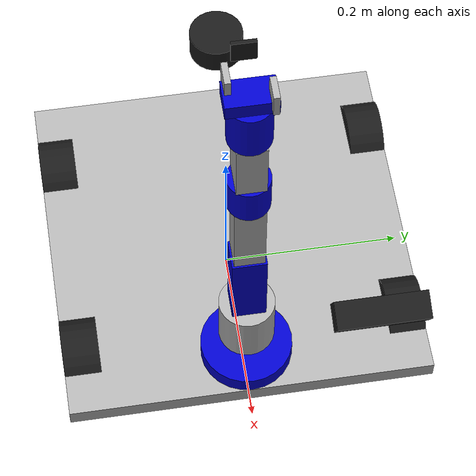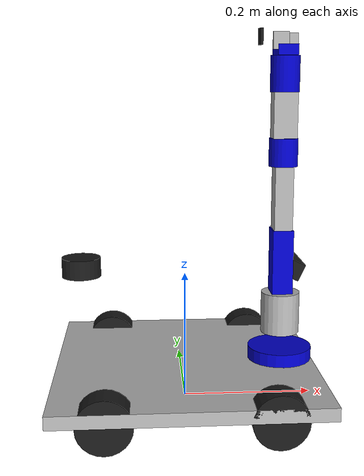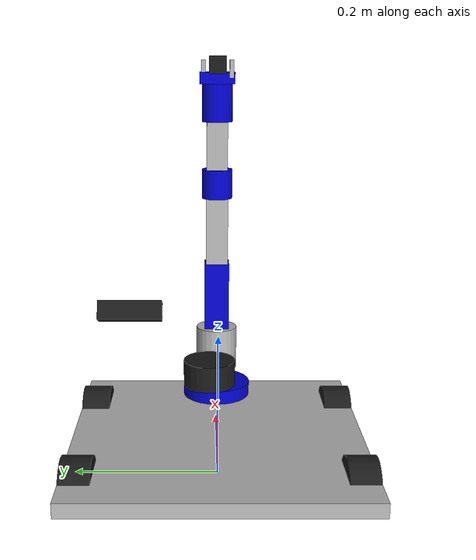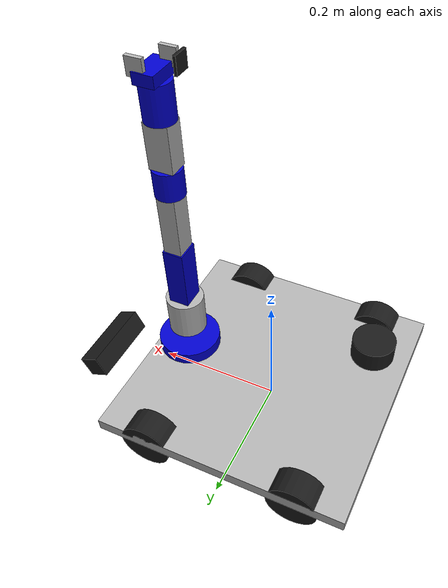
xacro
<?xml version="1.0"?>
<robot name="visual_amr" xmlns:xacro="http://www.ros.org/wiki/xacro" xmlns:gz="http://gazebosim.org/schema">

  <material name="silver"><color rgba="0.700 0.700 0.700 1.000"/></material>
  <material name="blue"><color rgba="0.0 0.0 0.8 1.0"/></material>
  <material name="black"><color rgba="0.1 0.1 0.1 1.0"/></material>

  <link name="base_footprint"/>

  <joint name="base_joint" type="fixed">
    <parent link="base_footprint"/>
    <child link="base_link"/>
    <origin xyz="0 0 0.050" rpy="0 0 0"/>
  </joint>

  <link name="base_link">
    <visual>
      <geometry><box size="0.4 0.4 0.02"/></geometry>
      <material name="silver"/>
    </visual>
    <collision>
      <geometry><box size="0.4 0.4 0.02"/></geometry>
    </collision>
    <inertial>
      <origin xyz="0 0 0" rpy="0 0 0"/>
      <mass value="10.0"/>
      <inertia ixx="${(1/12) * 10.0 * (0.4*0.4 + 0.02*0.02)}" ixy="0.0" ixz="0.0"
               iyy="${(1/12) * 10.0 * (0.4*0.4 + 0.02*0.02)}" iyz="0.0"
               izz="${(1/12) * 10.0 * (0.4*0.4 + 0.4*0.4)}"/>
    </inertial>
  </link>

  <!-- Include and invoke 4-wheel omni base macro -->
  <xacro:include filename="base_omni_4wheel.xacro"/>
  <xacro:base_omni_4wheel/>

  <joint name="oak_d_joint" type="fixed">
    <parent link="base_link"/>
    <child link="oak_d_link"/>
    <origin xyz="0.189 0.135 0.130" rpy="0 0.4363323 0"/>
  </joint>

  <link name="oak_d_link">
    <visual>
      <geometry><box size="0.03 0.1 0.03"/></geometry>
      <material name="black"/>
    </visual>
    <inertial>
      <origin xyz="0 0 0" rpy="0 0 0"/>
      <mass value="0.15"/>
      <inertia ixx="${(1/12) * 0.15 * (0.1*0.1 + 0.03*0.03)}" ixy="0.0" ixz="0.0"
               iyy="${(1/12) * 0.15 * (0.03*0.03 + 0.03*0.03)}" iyz="0.0"
               izz="${(1/12) * 0.15 * (0.03*0.03 + 0.1*0.1)}"/>
    </inertial>
  </link>

  <joint name="oak_d_optical_joint" type="fixed">
    <parent link="oak_d_link"/>
    <child link="oak_d_optical_link"/>
    <origin xyz="0 0 0" rpy="-1.5707963 0 -1.5707963"/>
  </joint>
  <link name="oak_d_optical_link"/>

  <joint name="lidar_joint" type="fixed">
    <parent link="base_link"/>
    <child link="lidar_link"/>
    <origin xyz="-0.160 0.013 0.160" rpy="0 0 1.5707963"/>
  </joint>

  <link name="lidar_link">
    <visual>
      <origin xyz="0 0 0" rpy="0 0 0"/>
      <geometry>
        <cylinder radius="0.03" length="0.03"/>
      </geometry>
      <material name="black"/>
    </visual>
    <collision>
      <origin xyz="0 0 0" rpy="0 0 0"/>
      <geometry>
        <cylinder radius="0.03" length="0.03"/>
      </geometry>
    </collision>
    <inertial>
      <origin xyz="0 0 0" rpy="0 0 0"/>
      <mass value="0.1"/>
      <inertia ixx="${(1/12) * 0.1 * (3*0.03*0.03 + 0.03*0.03)}" ixy="0.0" ixz="0.0"
               iyy="${(1/12) * 0.1 * (3*0.03*0.03 + 0.03*0.03)}" iyz="0.0"
               izz="${0.5 * 0.1 * 0.03 * 0.03}"/>
    </inertial>
  </link>

  <!-- 2026-08-24 実機HW確定: アーム取付 x=0.150,y=0,z=主板上面(0.060)
       [base_footprint基準、Ø100フランジ] → base_link基準は
       z=0.060-0.050=0.010。向き(rpy)は現状維持(J2正転で車体前方=+X
       へ倒れる設計を保つためyaw+90°のまま)。 -->
  <joint name="arm_base_joint" type="fixed">
    <parent link="base_link"/>
    <child link="arm_base_link"/>
    <origin xyz="0.150 0 0.010" rpy="0 0 1.5707963"/>
  </joint>

  <link name="arm_base_link">
    <visual>
      <geometry><cylinder radius="0.05" length="0.04"/></geometry>
      <material name="blue"/>
    </visual>
    <inertial>
      <origin xyz="0 0 0" rpy="0 0 0"/>
      <mass value="0.5"/>
      <inertia ixx="${(1/12) * 0.5 * (3*0.05*0.05 + 0.04*0.04)}" ixy="0.0" ixz="0.0"
               iyy="${(1/12) * 0.5 * (3*0.05*0.05 + 0.04*0.04)}" iyz="0.0"
               izz="${0.5 * 0.5 * 0.05 * 0.05}"/>
    </inertial>
  </link>

  <!-- Include and invoke SO-101 arm macro -->
  <xacro:include filename="so101_arm.xacro"/>
  <xacro:so101_arm/>

  <!-- Include and invoke parallel gripper macro -->
  <xacro:include filename="gripper.xacro"/>
  <xacro:so101_gripper/>

  <!-- Self collision settings for base_link -->
  <gazebo reference="base_link">
    <self_collision>false</self_collision>
  </gazebo>

  <!-- ros2_control configuration for arm and gripper -->
  <ros2_control name="amr_robot_system" type="system">
    <hardware>
      <plugin>gz_ros2_control/GazeboSimSystem</plugin>
    </hardware>
    <!-- Arm Joints -->
    <joint name="joint1">
      <command_interface name="position"/>
      <state_interface name="position">
        <param name="initial_value">0.0</param>
      </state_interface>
      <state_interface name="velocity"/>
    </joint>
    <joint name="joint2">
      <command_interface name="position"/>
      <state_interface name="position">
        <param name="initial_value">0.0</param>
      </state_interface>
      <state_interface name="velocity"/>
    </joint>
    <joint name="joint3">
      <command_interface name="position"/>
      <state_interface name="position">
        <param name="initial_value">0.0</param>
      </state_interface>
      <state_interface name="velocity"/>
    </joint>
    <joint name="joint4">
      <command_interface name="position"/>
      <state_interface name="position">
        <param name="initial_value">0.0</param>
      </state_interface>
      <state_interface name="velocity"/>
    </joint>
    <joint name="joint5">
      <command_interface name="position"/>
      <state_interface name="position">
        <param name="initial_value">0.0</param>
      </state_interface>
      <state_interface name="velocity"/>
    </joint>
    <joint name="joint6">
      <command_interface name="position"/>
      <state_interface name="position">
        <param name="initial_value">0.0</param>
      </state_interface>
      <state_interface name="velocity"/>
    </joint>
    <!-- Gripper Joints -->
    <joint name="left_finger_joint">
      <command_interface name="position"/>
      <state_interface name="position">
        <param name="initial_value">0.0</param>
      </state_interface>
      <state_interface name="velocity"/>
    </joint>
    <joint name="right_finger_joint">
      <state_interface name="position">
        <param name="initial_value">0.0</param>
      </state_interface>
      <state_interface name="velocity"/>
    </joint>
  </ros2_control>

  <!-- Gazebo Sim ros2_control plugin -->
  <gazebo>
    <plugin filename="gz_ros2_control-system" name="gz_ros2_control::GazeboSimROS2ControlPlugin">
      <parameters>$(find amr_description)/config/amr_controllers.yaml</parameters>
      <hold_joints>false</hold_joints>
      <position_proportional_gain>1000.0</position_proportional_gain>
    </plugin>
  </gazebo>

  <!-- IMU Sensor -->
  <gazebo reference="base_link">
    <sensor name="imu_sensor" type="imu">
      <always_on>1</always_on>
      <update_rate>50</update_rate>
      <visualize>true</visualize>
      <topic>imu</topic>
    </sensor>
  </gazebo>

  <!-- OAK-D RGB-D Camera Sensor -->
  <gazebo reference="oak_d_link">
    <sensor name="oakd_camera" type="rgbd">
      <always_on>1</always_on>
      <update_rate>30</update_rate>
      <camera>
        <horizontal_fov>1.25</horizontal_fov>
        <image>
          <width>640</width>
          <height>480</height>
          <format>R8G8B8</format>
        </image>
        <clip>
          <near>0.1</near>
          <far>10.0</far>
        </clip>
      </camera>
      <topic>camera</topic>
    </sensor>
  </gazebo>

  <!-- 360 Degree 2D LiDAR Sensor -->
  <gazebo reference="lidar_link">
    <sensor name="gpu_lidar" type="gpu_lidar">
      <always_on>1</always_on>
      <update_rate>10</update_rate>
      <visualize>true</visualize>
      <topic>/lidar</topic>
      <lidar>
        <scan>
          <horizontal>
            <samples>360</samples>
            <resolution>1</resolution>
            <min_angle>-3.14159</min_angle>
            <max_angle>3.14159</max_angle>
          </horizontal>
        </scan>
        <range>
          <min>0.15</min>
          <max>12.0</max>
        </range>
      </lidar>
      <gz_frame_id>lidar_link</gz_frame_id>
    </sensor>
  </gazebo>

  <!-- Gazebo Sim Sensor Plugins -->
  <gazebo>
    <plugin filename="gz-sim-imu-system" name="gz::sim::systems::Imu">
    </plugin>
    <plugin filename="gz-sim-sensors-system" name="gz::sim::systems::Sensors">
      <render_engine>ogre2</render_engine>
    </plugin>
    <plugin filename="gz-sim-joint-state-publisher-system" name="gz::sim::systems::JointStatePublisher">
    </plugin>
  </gazebo>
</robot>

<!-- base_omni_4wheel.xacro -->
<robot xmlns:xacro="http://www.ros.org/wiki/xacro" xmlns:gz="http://gazebosim.org/schema">

  <!-- Macro for a single omni wheel -->
  <xacro:macro name="omni_wheel" params="prefix x_reflect y_reflect fdir">
    <joint name="${prefix}_wheel_joint" type="continuous">
      <parent link="base_link"/>
      <child link="${prefix}_wheel_link"/>
      <origin xyz="${x_reflect * 0.120} ${y_reflect * 0.180} -0.010" rpy="0 0 0"/>
      <axis xyz="0 1 0"/>
      <limit effort="100.0" velocity="16.0"/>
    </joint>

    <link name="${prefix}_wheel_link">
      <visual>
        <origin xyz="0 0 0" rpy="${pi/2} 0 0"/>
        <geometry>
          <cylinder radius="0.040" length="0.04"/>
        </geometry>
        <material name="black"/>
      </visual>
      <collision>
        <origin xyz="0 0 0" rpy="0 0 0"/>
        <geometry>
          <sphere radius="0.040"/>
        </geometry>
      </collision>
      <inertial>
        <origin xyz="0 0 0" rpy="${pi/2} 0 0"/>
        <mass value="0.2"/>
        <inertia ixx="${(1/12) * 0.2 * (3 * 0.040 * 0.040 + 0.04 * 0.04)}" ixy="0.0" ixz="0.0"
                 iyy="${(1/12) * 0.2 * (3 * 0.040 * 0.040 + 0.04 * 0.04)}" iyz="0.0"
                 izz="${0.5 * 0.2 * 0.040 * 0.040}"/>
      </inertial>
    </link>

    <gazebo reference="${prefix}_wheel_link">
      <self_collision>false</self_collision>
      <collision name="${prefix}_wheel_link_collision">
        <surface>
          <friction>
            <ode>
              <mu>100.0</mu>
              <mu2>0.0</mu2>
              <fdir1 gz:expressed_in="base_footprint">${fdir}</fdir1>
            </ode>
          </friction>
          <contact>
            <ode>
              <kp>1e7</kp>
              <kd>1.0</kd>
            </ode>
          </contact>
        </surface>
      </collision>
    </gazebo>
  </xacro:macro>

  <!-- Macro to add 4 omni wheels -->
  <xacro:macro name="base_omni_4wheel">
    <xacro:omni_wheel prefix="front_left" x_reflect="1" y_reflect="1" fdir="1 -1 0"/>
    <xacro:omni_wheel prefix="front_right" x_reflect="1" y_reflect="-1" fdir="-1 -1 0"/>
    <xacro:omni_wheel prefix="rear_left" x_reflect="-1" y_reflect="1" fdir="1 1 0"/>
    <xacro:omni_wheel prefix="rear_right" x_reflect="-1" y_reflect="-1" fdir="-1 1 0"/>

    <gazebo>
      <plugin
        filename="gz-sim-diff-drive-system"
        name="gz::sim::systems::DiffDrive">
        <left_joint>front_left_wheel_joint</left_joint>
        <left_joint>rear_left_wheel_joint</left_joint>
        <right_joint>front_right_wheel_joint</right_joint>
        <right_joint>rear_right_wheel_joint</right_joint>
        <wheel_separation>0.600</wheel_separation>
        <wheel_radius>0.040</wheel_radius>
        <max_linear_velocity>0.45</max_linear_velocity>
        <min_linear_velocity>-0.45</min_linear_velocity>
        <max_angular_velocity>1.5</max_angular_velocity>
        <min_angular_velocity>-1.5</min_angular_velocity>
        <topic>/cmd_vel</topic>
        <odom_topic>/odom</odom_topic>
        <frame_id>odom</frame_id>
        <child_frame_id>base_footprint</child_frame_id>
        <publish_odom>true</publish_odom>
        <publish_odom_tf>false</publish_odom_tf>
        <odom_publish_frequency>50</odom_publish_frequency>
      </plugin>
    </gazebo>
  </xacro:macro>

</robot>

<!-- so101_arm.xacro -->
<robot xmlns:xacro="http://www.ros.org/wiki/xacro">

  <xacro:macro name="so101_arm">

    <!-- ===== Joint 1 : ベース旋回 (Z) ===== -->
    <joint name="joint1" type="revolute">
      <parent link="arm_base_link"/>
      <child link="link1"/>
      <origin xyz="0 0 0.04350" rpy="0 0 0"/>
      <axis xyz="0 0 1"/>
      <limit lower="-3.05" upper="3.05" effort="0.6" velocity="2.2"/>
      <dynamics damping="0.5" friction="0.2"/>
    </joint>

    <link name="link1">
      <visual>
        <origin xyz="0 0 0.03223" rpy="0 0 0"/>
        <geometry><cylinder radius="0.030" length="0.06445"/></geometry>
        <material name="silver"/>
      </visual>
      <collision>
        <origin xyz="0 0 0.03223" rpy="0 0 0"/>
        <geometry><cylinder radius="0.030" length="0.06445"/></geometry>
      </collision>
      <inertial>
        <origin xyz="-0.0006 0 0.0339" rpy="0 0 0"/>
        <mass value="0.1476"/>
        <inertia ixx="${(1/12) * 0.1476 * (3*0.030*0.030 + 0.06445*0.06445)}" ixy="0.0" ixz="0.0"
                 iyy="${(1/12) * 0.1476 * (3*0.030*0.030 + 0.06445*0.06445)}" iyz="0.0"
                 izz="${0.5 * 0.1476 * 0.030 * 0.030}"/>
      </inertial>
    </link>

    <!-- ===== Joint 2 : 肩ピッチ (X) ===== -->
    <joint name="joint2" type="revolute">
      <parent link="link1"/>
      <child link="link2"/>
      <origin xyz="0 0 0.06445" rpy="0 0 0"/>
      <axis xyz="1 0 0"/>
      <limit lower="-1.65" upper="1.65" effort="1.5" velocity="2.2"/>
      <dynamics damping="1.0" friction="0.4"/>
    </joint>

    <link name="link2">
      <visual>
        <origin xyz="0 0 0.05" rpy="0 0 0"/>
        <geometry><box size="0.036 0.032 0.100"/></geometry>
        <material name="blue"/>
      </visual>
      <collision>
        <origin xyz="0 0 0.05" rpy="0 0 0"/>
        <geometry><box size="0.036 0.032 0.100"/></geometry>
      </collision>
      <inertial>
        <origin xyz="-0.0010 0 0.0666" rpy="0 0 0"/>
        <mass value="0.1232"/>
        <inertia ixx="${(1/12) * 0.1232 * (0.032*0.032 + 0.100*0.100)}" ixy="0.0" ixz="0.0"
                 iyy="${(1/12) * 0.1232 * (0.036*0.036 + 0.100*0.100)}" iyz="0.0"
                 izz="${(1/12) * 0.1232 * (0.036*0.036 + 0.032*0.032)}"/>
      </inertial>
    </link>

    <!-- ===== Joint 3 : 肘ピッチ (X) ===== -->
    <!-- 2026-08-10: joint2と同じ理由でeffortをモデル訂正(重力
         モーメントを受けるピッチ軸)。J3より先の質量はJ2より先より
         小さいが、同じくSTS3215サーボ(ストール1.9N・m)を想定し、
         安全側にjoint2と同じ1.5N・mへ引き上げる。 -->
    <joint name="joint3" type="revolute">
      <parent link="link2"/>
      <child link="link3"/>
      <origin xyz="0 0 0.10000" rpy="0 0 0"/>
      <axis xyz="1 0 0"/>
      <limit lower="-1.66" upper="1.66" effort="1.5" velocity="2.2"/>
      <dynamics damping="0.8" friction="0.3"/>
    </joint>

    <link name="link3">
      <visual>
        <origin xyz="0 0 0.04878" rpy="0 0 0"/>
        <geometry><box size="0.032 0.028 0.09755"/></geometry>
        <material name="silver"/>
      </visual>
      <collision>
        <origin xyz="0 0 0.04878" rpy="0 0 0"/>
        <geometry><box size="0.032 0.028 0.09755"/></geometry>
      </collision>
      <inertial>
        <origin xyz="0.0017 0 0.0592" rpy="0 0 0"/>
        <mass value="0.1197"/>
        <inertia ixx="${(1/12) * 0.1197 * (0.028*0.028 + 0.09755*0.09755)}" ixy="0.0" ixz="0.0"
                 iyy="${(1/12) * 0.1197 * (0.032*0.032 + 0.09755*0.09755)}" iyz="0.0"
                 izz="${(1/12) * 0.1197 * (0.032*0.032 + 0.028*0.028)}"/>
      </inertial>
    </link>

    <!-- ===== Joint 4 : 前腕ロール (Z) ===== -->
    <joint name="joint4" type="revolute">
      <parent link="link3"/>
      <child link="link4"/>
      <origin xyz="0 0 0.09755" rpy="0 0 0"/>
      <axis xyz="0 0 1"/>
      <limit lower="-3.05" upper="3.05" effort="0.6" velocity="2.2"/>
      <dynamics damping="0.4" friction="0.15"/>
    </joint>

    <link name="link4">
      <visual>
        <origin xyz="0 0 0.02123" rpy="0 0 0"/>
        <geometry><cylinder radius="0.022" length="0.04245"/></geometry>
        <material name="blue"/>
      </visual>
      <collision>
        <origin xyz="0 0 0.02123" rpy="0 0 0"/>
        <geometry><cylinder radius="0.022" length="0.04245"/></geometry>
      </collision>
      <inertial>
        <origin xyz="-0.0011 0 0.0283" rpy="0 0 0"/>
        <mass value="0.0811"/>
        <inertia ixx="${(1/12) * 0.0811 * (3*0.022*0.022 + 0.04245*0.04245)}" ixy="0.0" ixz="0.0"
                 iyy="${(1/12) * 0.0811 * (3*0.022*0.022 + 0.04245*0.04245)}" iyz="0.0"
                 izz="${0.5 * 0.0811 * 0.022 * 0.022}"/>
      </inertial>
    </link>

    <!-- ===== Joint 5 : 手首ピッチ (X) ===== -->
    <!-- 2026-08-10: effortをモデル訂正。手首ピッチは先端側(link5,
         link6,グリッパー)のみを支えるため質量負荷はjoint2/3より
         小さいが、同様に重力モーメントを受けるピッチ軸であるため
         0.6 → 0.9 N・m(STS3215ストール1.9N・mの47%)へ引き上げる。 -->
    <joint name="joint5" type="revolute">
      <parent link="link4"/>
      <child link="link5"/>
      <origin xyz="0 0 0.04245" rpy="0 0 0"/>
      <axis xyz="1 0 0"/>
      <limit lower="-1.66" upper="1.66" effort="0.9" velocity="2.2"/>
      <dynamics damping="0.5" friction="0.2"/>
    </joint>

    <link name="link5">
      <visual>
        <origin xyz="0 0 0.03428" rpy="0 0 0"/>
        <geometry><box size="0.030 0.036 0.06855"/></geometry>
        <material name="silver"/>
      </visual>
      <collision>
        <origin xyz="0 0 0.03428" rpy="0 0 0"/>
        <geometry><box size="0.030 0.036 0.06855"/></geometry>
      </collision>
      <inertial>
        <origin xyz="0.0021 0 0.0394" rpy="0 0 0"/>
        <mass value="0.0982"/>
        <inertia ixx="${(1/12) * 0.0982 * (0.036*0.036 + 0.06855*0.06855)}" ixy="0.0" ixz="0.0"
                 iyy="${(1/12) * 0.0982 * (0.030*0.030 + 0.06855*0.06855)}" iyz="0.0"
                 izz="${(1/12) * 0.0982 * (0.030*0.030 + 0.036*0.036)}"/>
      </inertial>
    </link>

    <!-- ===== Joint 6 : 手首ロール (Z) ===== -->
    <joint name="joint6" type="revolute">
      <parent link="link5"/>
      <child link="link6"/>
      <origin xyz="0 0 0.06855" rpy="0 0 0"/>
      <axis xyz="0 0 1"/>
      <limit lower="-3.05" upper="3.05" effort="0.6" velocity="2.2"/>
      <dynamics damping="0.4" friction="0.15"/>
    </joint>

    <link name="link6">
      <visual>
        <origin xyz="0 0 0.0267" rpy="0 0 0"/>
        <geometry><cylinder radius="0.022" length="0.0534"/></geometry>
        <material name="blue"/>
      </visual>
      <collision>
        <origin xyz="0 0 0.0267" rpy="0 0 0"/>
        <geometry><cylinder radius="0.022" length="0.0534"/></geometry>
      </collision>
      <inertial>
        <origin xyz="0 0.0120 0.0368" rpy="0 0 0"/>
        <mass value="0.1335"/>
        <inertia ixx="${(1/12) * 0.1335 * (3*0.022*0.022 + 0.0534*0.0534)}" ixy="0.0" ixz="0.0"
                 iyy="${(1/12) * 0.1335 * (3*0.022*0.022 + 0.0534*0.0534)}" iyz="0.0"
                 izz="${0.5 * 0.1335 * 0.022 * 0.022}"/>
      </inertial>
    </link>

    <!-- ===== 手首カメラ (ELP基板) =====
         CAD実測: J6 から (0, +0.03745, +0.0804) m。基板が YZ 平面に立っており
         光軸は -Y (真横) を向く。ハンドアイとして使う場合は下記 rpy を
         見直すこと (把持点は +Z 側・カメラより手前にある)。 -->
    <joint name="wrist_camera_joint" type="fixed">
      <parent link="link6"/>
      <child link="wrist_camera_link"/>
      <origin xyz="0 0.03745 0.0804" rpy="0 0 0"/>
    </joint>

    <link name="wrist_camera_link">
      <visual>
        <origin xyz="0 0 0" rpy="0 0 0"/>
        <geometry><box size="0.024 0.004 0.024"/></geometry>
        <material name="black"/>
      </visual>
    </link>

    <!-- 光学規約フレーム (Z前方・X右・Y下)。現状の光軸 -Y に対応 -->
    <joint name="wrist_camera_optical_joint" type="fixed">
      <parent link="wrist_camera_link"/>
      <child link="wrist_camera_optical_link"/>
      <origin xyz="0 0 0" rpy="1.5707963 0 0"/>
    </joint>
    <link name="wrist_camera_optical_link"/>

    <!-- ===== 把持点 / 指先 (IKの目標に使う) =====
         grasp_link  : 把持面の中心 (J6 から +0.07410) ← MoveIt の目標はここ
         tcp_link    : 指先端        (J6 から +0.08650) -->
    <joint name="grasp_joint" type="fixed">
      <parent link="link6"/>
      <child link="grasp_link"/>
      <origin xyz="0 0 0.07410" rpy="0 0 0"/>
    </joint>
    <link name="grasp_link"/>

    <joint name="tcp_joint" type="fixed">
      <parent link="link6"/>
      <child link="tcp_link"/>
      <origin xyz="0 0 0.08650" rpy="0 0 0"/>
    </joint>
    <link name="tcp_link"/>

    <!-- 自己干渉設定 -->
    <gazebo reference="link1"><self_collision>false</self_collision></gazebo>
    <gazebo reference="link2"><self_collision>false</self_collision></gazebo>
    <gazebo reference="link3"><self_collision>false</self_collision></gazebo>

  </xacro:macro>

</robot>

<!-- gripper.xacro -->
<robot xmlns:xacro="http://www.ros.org/wiki/xacro">

  <xacro:macro name="so101_gripper">

    <!-- ===== グリッパー基部 (ピニオン軸ホーン座面) ===== -->
    <joint name="gripper_base_joint" type="fixed">
      <parent link="link6"/>
      <child link="gripper_base_link"/>
      <origin xyz="0 0 0.0534" rpy="0 0 0"/>
    </joint>

    <link name="gripper_base_link">
      <visual>
        <origin xyz="0 0 0.008" rpy="0 0 0"/>
        <geometry><box size="0.050 0.030 0.016"/></geometry>
        <material name="blue"/>
      </visual>
      <collision>
        <origin xyz="0 0 0.008" rpy="0 0 0"/>
        <geometry><box size="0.050 0.030 0.016"/></geometry>
      </collision>
      <inertial>
        <origin xyz="0 0 0.008" rpy="0 0 0"/>
        <mass value="0.030"/>
        <inertia ixx="${(1/12) * 0.030 * (0.030*0.030 + 0.016*0.016)}" ixy="0.0" ixz="0.0"
                 iyy="${(1/12) * 0.030 * (0.050*0.050 + 0.016*0.016)}" iyz="0.0"
                 izz="${(1/12) * 0.030 * (0.050*0.050 + 0.030*0.030)}"/>
      </inertial>
    </link>

    <!-- ===== 左指 (X負側のラック、Y +10.7mm 側) =====
         joint 値 0 = 把持面 x = -0.017 (開口34mm)
         正方向 = 開く (-X へ移動) -->
    <joint name="left_finger_joint" type="prismatic">
      <parent link="gripper_base_link"/>
      <child link="left_finger_link"/>
      <origin xyz="-0.020 0.0107 0" rpy="0 0 0"/>
      <axis xyz="-1 0 0"/>
      <limit lower="-0.013" upper="0.013" effort="50.0" velocity="0.026"/>
      <dynamics damping="5.0" friction="1.0"/>
    </joint>

    <link name="left_finger_link">
      <visual>
        <origin xyz="0 0 0.0207" rpy="0 0 0"/>
        <geometry><box size="0.006 0.0234 0.0249"/></geometry>
        <material name="silver"/>
      </visual>
      <collision>
        <origin xyz="0 0 0.0207" rpy="0 0 0"/>
        <geometry><box size="0.006 0.0234 0.0249"/></geometry>
      </collision>
      <inertial>
        <origin xyz="0.0089 0 0.0152" rpy="0 0 0"/>
        <mass value="0.0061"/>
        <inertia ixx="${(1/12) * 0.0061 * (0.0234*0.0234 + 0.0249*0.0249)}" ixy="0.0" ixz="0.0"
                 iyy="${(1/12) * 0.0061 * (0.006*0.006 + 0.0249*0.0249)}" iyz="0.0"
                 izz="${(1/12) * 0.0061 * (0.006*0.006 + 0.0234*0.0234)}"/>
      </inertial>
    </link>

    <!-- ===== 右指 (X正側のラック、Y -10.7mm 側) ===== -->
    <joint name="right_finger_joint" type="prismatic">
      <parent link="gripper_base_link"/>
      <child link="right_finger_link"/>
      <origin xyz="0.020 -0.0107 0" rpy="0 0 0"/>
      <axis xyz="1 0 0"/>
      <limit lower="-0.013" upper="0.013" effort="50.0" velocity="0.026"/>
      <dynamics damping="5.0" friction="1.0"/>
      <mimic joint="left_finger_joint" multiplier="1.0" offset="0.0"/>
    </joint>

    <link name="right_finger_link">
      <visual>
        <origin xyz="0 0 0.0207" rpy="0 0 0"/>
        <geometry><box size="0.006 0.0234 0.0249"/></geometry>
        <material name="silver"/>
      </visual>
      <collision>
        <origin xyz="0 0 0.0207" rpy="0 0 0"/>
        <geometry><box size="0.006 0.0234 0.0249"/></geometry>
      </collision>
      <inertial>
        <origin xyz="-0.0089 0 0.0152" rpy="0 0 0"/>
        <mass value="0.0061"/>
        <inertia ixx="${(1/12) * 0.0061 * (0.0234*0.0234 + 0.0249*0.0249)}" ixy="0.0" ixz="0.0"
                 iyy="${(1/12) * 0.0061 * (0.006*0.006 + 0.0249*0.0249)}" iyz="0.0"
                 izz="${(1/12) * 0.0061 * (0.006*0.006 + 0.0234*0.0234)}"/>
      </inertial>
    </link>

    <gazebo reference="gripper_base_link"><self_collision>false</self_collision></gazebo>

  </xacro:macro>

</robot>
